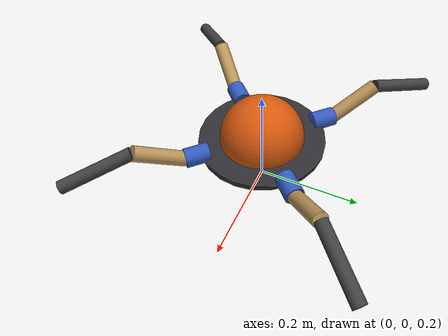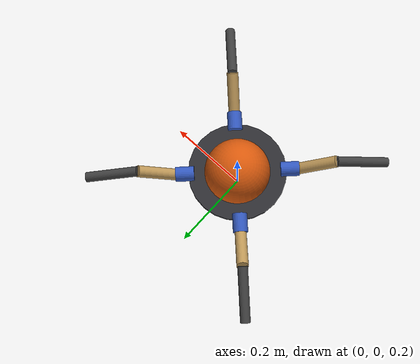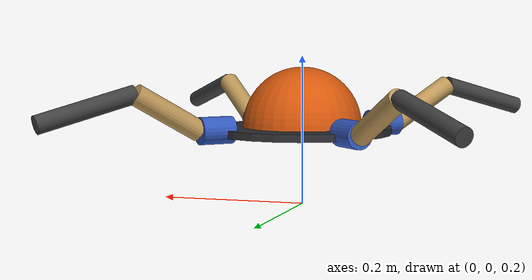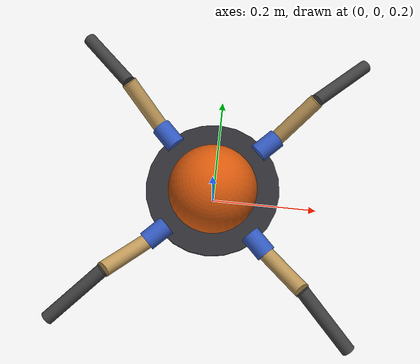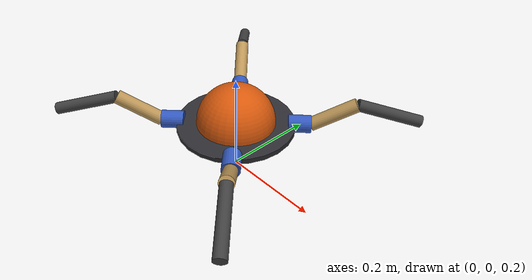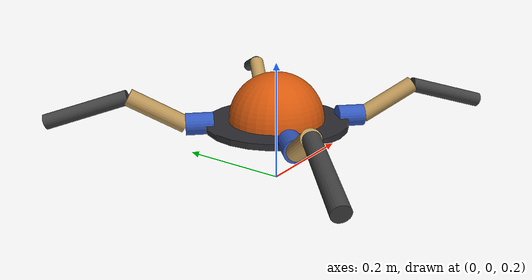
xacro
<?xml version="1.0"?>
<robot xmlns:xacro="http://www.ros.org/wiki/xacro" name="spider">

  <xacro:property name="base_r"        value="0.12"/>
  <xacro:property name="base_h"        value="0.01"/>
  <xacro:property name="dome_r"        value="0.1"/>
  <xacro:property name="dome_z"        value="${base_h / 2.0}"/>
  <xacro:property name="hip_r"         value="${base_r - 0.015}"/>
  <xacro:property name="hip_z_offset"  value="${base_h / 2.0}"/>

  <xacro:property name="coxa_r"  value="0.018"/>
  <xacro:property name="coxa_l"  value="0.045"/>
  <xacro:property name="femur_r" value="0.014"/>
  <xacro:property name="femur_l" value="0.10"/>
  <xacro:property name="tibia_r" value="0.012"/>
  <xacro:property name="tibia_l" value="0.13"/>

  <xacro:property name="base_mass"  value="1.5"/>
  <xacro:property name="coxa_mass"  value="0.06"/>
  <xacro:property name="femur_mass" value="0.12"/>
  <xacro:property name="tibia_mass" value="0.08"/>

  <xacro:macro name="sphere_inertia" params="m r">
    <inertial>
      <origin xyz="0 0 0" rpy="0 0 0"/>
      <mass value="${m}"/>
      <inertia ixx="${2.0/5.0 * m * r * r}" iyy="${2.0/5.0 * m * r * r}" izz="${2.0/5.0 * m * r * r}" ixy="0" ixz="0" iyz="0"/>
    </inertial>
  </xacro:macro>

  <xacro:macro name="cylinder_inertia" params="m r l">
    <inertial>
      <origin xyz="0 0 0" rpy="0 0 0"/>
      <mass value="${m}"/>
      <inertia ixx="${m * (3*r*r + l*l) / 12.0}" iyy="${m * (3*r*r + l*l) / 12.0}" izz="${m * r * r / 2.0}" ixy="0" ixz="0" iyz="0"/>
    </inertial>
  </xacro:macro>

  <xacro:macro name="base_link_inertia">
    <inertial>
      <origin xyz="0 0 0" rpy="0 0 0"/>
      <mass value="${base_mass}"/>
      <inertia ixx="${base_mass * (3*base_r*base_r + base_h*base_h) / 12.0}" iyy="${base_mass * (3*base_r*base_r + base_h*base_h) / 12.0}" izz="${base_mass * base_r*base_r / 2.0}" ixy="0" ixz="0" iyz="0"/>
    </inertial>
  </xacro:macro>

  <xacro:macro name="leg" params="leg_name hip_x hip_y hip_yaw">

    <link name="${leg_name}_coxa_link">
      <inertial>
        <origin xyz="${coxa_l/2} 0 0" rpy="0 0 0"/>
        <mass value="${coxa_mass}"/>
        <inertia ixx="${coxa_mass * coxa_r*coxa_r / 2.0}" iyy="${coxa_mass * (3*coxa_r*coxa_r + coxa_l*coxa_l) / 12.0}" izz="${coxa_mass * (3*coxa_r*coxa_r + coxa_l*coxa_l) / 12.0}" ixy="0" ixz="0" iyz="0"/>
      </inertial>
      <visual>
        <origin xyz="${coxa_l/2} 0 0" rpy="0 ${pi/2} 0"/>
        <geometry><cylinder radius="${coxa_r}" length="${coxa_l}"/></geometry>
        <material name="servo_blue"><color rgba="0.2 0.35 0.75 1.0"/></material>
      </visual>
      <collision>
        <origin xyz="${coxa_l/2} 0 0" rpy="0 ${pi/2} 0"/>
        <geometry><cylinder radius="${coxa_r}" length="${coxa_l}"/></geometry>
      </collision>
    </link>

    <joint name="${leg_name}_coxa_joint" type="revolute">
      <parent link="base_link"/>
      <child link="${leg_name}_coxa_link"/>
      <origin xyz="${hip_x} ${hip_y} ${hip_z_offset}" rpy="0 0 ${hip_yaw}"/>
      <axis xyz="0 0 1"/>
      <limit lower="${-pi/2}" upper="${pi/2}" effort="10.0" velocity="3.14"/>
      <dynamics damping="0.1" friction="0.0"/>
    </joint>

    <link name="${leg_name}_femur_link">
      <inertial>
        <origin xyz="${femur_l/2} 0 0" rpy="0 0 0"/>
        <mass value="${femur_mass}"/>
        <inertia ixx="${femur_mass * femur_r*femur_r / 2.0}" iyy="${femur_mass * (3*femur_r*femur_r + femur_l*femur_l) / 12.0}" izz="${femur_mass * (3*femur_r*femur_r + femur_l*femur_l) / 12.0}" ixy="0" ixz="0" iyz="0"/>
      </inertial>
      <visual>
        <origin xyz="${femur_l/2} 0 0" rpy="0 ${pi/2} 0"/>
        <geometry><cylinder radius="${femur_r}" length="${femur_l}"/></geometry>
        <material name="link_wood"><color rgba="0.75 0.60 0.35 1.0"/></material>
      </visual>
      <collision>
        <origin xyz="${femur_l/2} 0 0" rpy="0 ${pi/2} 0"/>
        <geometry><cylinder radius="${femur_r}" length="${femur_l}"/></geometry>
      </collision>
    </link>

    <joint name="${leg_name}_femur_joint" type="revolute">
      <parent link="${leg_name}_coxa_link"/>
      <child link="${leg_name}_femur_link"/>
      <origin xyz="${coxa_l} 0 0" rpy="0 ${-pi/6} 0"/>
      <axis xyz="0 1 0"/>
      <limit lower="${-pi/3}" upper="${pi/3}" effort="10.0" velocity="3.14"/>
      <dynamics damping="0.1" friction="0.0"/>
    </joint>

    <link name="${leg_name}_tibia_link">
      <inertial>
        <origin xyz="${tibia_l/2} 0 0" rpy="0 0 0"/>
        <mass value="${tibia_mass}"/>
        <inertia ixx="${tibia_mass * tibia_r*tibia_r / 2.0}" iyy="${tibia_mass * (3*tibia_r*tibia_r + tibia_l*tibia_l) / 12.0}" izz="${tibia_mass * (3*tibia_r*tibia_r + tibia_l*tibia_l) / 12.0}" ixy="0" ixz="0" iyz="0"/>
      </inertial>
      <visual>
        <origin xyz="${tibia_l/2} 0 0" rpy="0 ${pi/2} 0"/>
        <geometry><cylinder radius="${tibia_r}" length="${tibia_l}"/></geometry>
        <material name="link_dark"><color rgba="0.25 0.25 0.25 1.0"/></material>
      </visual>
      <collision>
        <origin xyz="${tibia_l/2} 0 0" rpy="0 ${pi/2} 0"/>
        <geometry><cylinder radius="${tibia_r}" length="${tibia_l}"/></geometry>
      </collision>
      <collision>
        <origin xyz="${tibia_l} 0 0" rpy="0 0 0"/>
        <geometry><sphere radius="${tibia_r}"/></geometry>
      </collision>
    </link>

    <joint name="${leg_name}_tibia_joint" type="revolute">
      <parent link="${leg_name}_femur_link"/>
      <child link="${leg_name}_tibia_link"/>
      <origin xyz="${femur_l} 0 0" rpy="0 ${pi/4} 0"/>
      <axis xyz="0 1 0"/>
      <limit lower="${-pi/2}" upper="${pi/2}" effort="10.0" velocity="3.14"/>
      <dynamics damping="0.1" friction="0.0"/>
    </joint>

    <transmission name="${leg_name}_coxa_trans"><type>transmission_interface/SimpleTransmission</type><joint name="${leg_name}_coxa_joint"><hardwareInterface>hardware_interface/PositionJointInterface</hardwareInterface></joint><actuator name="${leg_name}_coxa_joint_motor"><hardwareInterface>hardware_interface/PositionJointInterface</hardwareInterface><mechanicalReduction>1</mechanicalReduction></actuator></transmission>
    <transmission name="${leg_name}_femur_trans"><type>transmission_interface/SimpleTransmission</type><joint name="${leg_name}_femur_joint"><hardwareInterface>hardware_interface/PositionJointInterface</hardwareInterface></joint><actuator name="${leg_name}_femur_joint_motor"><hardwareInterface>hardware_interface/PositionJointInterface</hardwareInterface><mechanicalReduction>1</mechanicalReduction></actuator></transmission>
    <transmission name="${leg_name}_tibia_trans"><type>transmission_interface/SimpleTransmission</type><joint name="${leg_name}_tibia_joint"><hardwareInterface>hardware_interface/PositionJointInterface</hardwareInterface></joint><actuator name="${leg_name}_tibia_joint_motor"><hardwareInterface>hardware_interface/PositionJointInterface</hardwareInterface><mechanicalReduction>1</mechanicalReduction></actuator></transmission>

  </xacro:macro>

  <link name="base_footprint"/>
  <joint name="base_footprint_joint" type="fixed">
    <parent link="base_footprint"/>
    <child link="base_link"/>
    <origin xyz="0 0 0.30" rpy="0 0 0"/>
  </joint>

  <link name="base_link">
    <xacro:base_link_inertia/>
    <visual>
      <origin xyz="0 0 0" rpy="0 0 0"/>
      <geometry><cylinder radius="${base_r}" length="${base_h}"/></geometry>
      <material name="chassis_dark"><color rgba="0.18 0.18 0.20 1.0"/></material>
    </visual>
    <visual>
      <origin xyz="0 0 ${dome_z}" rpy="0 0 0"/>
      <geometry><mesh filename="package://spider_description/meshes/dome.obj"/></geometry>
      <material name="chassis_orange"><color rgba="0.85 0.35 0.05 1.0"/></material>
    </visual>
    <collision>
      <origin xyz="0 0 0" rpy="0 0 0"/>
      <geometry><cylinder radius="${base_r}" length="${base_h}"/></geometry>
    </collision>
    <collision>
      <origin xyz="0 0 ${dome_z + dome_r/2.0}" rpy="0 0 0"/>
      <geometry><cylinder radius="${dome_r}" length="${dome_r}"/></geometry>
    </collision>
  </link>

  <xacro:leg leg_name="front_right" hip_x="${hip_r * 0.70711}"  hip_y="${hip_r * 0.70711}" hip_yaw="${pi/4}"/>
  <xacro:leg leg_name="front_left"  hip_x="${-hip_r * 0.70711}" hip_y="${hip_r * 0.70711}" hip_yaw="${3*pi/4}"/>
  <xacro:leg leg_name="back_left"   hip_x="${-hip_r * 0.70711}" hip_y="${-hip_r * 0.70711}" hip_yaw="${-3*pi/4}"/>
  <xacro:leg leg_name="back_right"  hip_x="${hip_r * 0.70711}"  hip_y="${-hip_r * 0.70711}" hip_yaw="${-pi/4}"/>

  <ros2_control name="spider_ign_ros2_control" type="system">
    <hardware>
      <plugin>ign_ros2_control/IgnitionSystem</plugin>
    </hardware>

    <xacro:macro name="leg_control" params="prefix">
      <joint name="${prefix}_coxa_joint">
        <command_interface name="position"><param name="min">${-pi/2}</param><param name="max">${pi/2}</param></command_interface>
        <state_interface name="position"/><state_interface name="velocity"/>
      </joint>
      <joint name="${prefix}_femur_joint">
        <command_interface name="position"><param name="min">${-pi/3}</param><param name="max">${pi/3}</param></command_interface>
        <state_interface name="position"/><state_interface name="velocity"/>
      </joint>
      <joint name="${prefix}_tibia_joint">
        <command_interface name="position">
          <param name="min">${-pi/2}</param>
          <param name="max">${pi/2}</param>
        </command_interface>
        <state_interface name="position"/><state_interface name="velocity"/>
      </joint>
    </xacro:macro>

    <xacro:leg_control prefix="front_right"/>
    <xacro:leg_control prefix="front_left"/>
    <xacro:leg_control prefix="back_left"/>
    <xacro:leg_control prefix="back_right"/>

  </ros2_control>

  <gazebo>
    <plugin filename="libign_ros2_control-system.so" name="ign_ros2_control::IgnitionROS2ControlPlugin">
      <parameters>$(find spider_description)/config/controllers.yaml</parameters>
      <ros><remapping>/controller_manager/robot_description:=/robot_description</remapping></ros>
    </plugin>
  </gazebo>

</robot>
